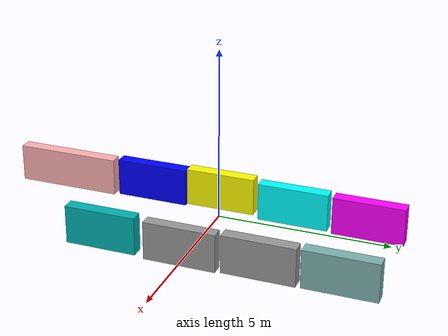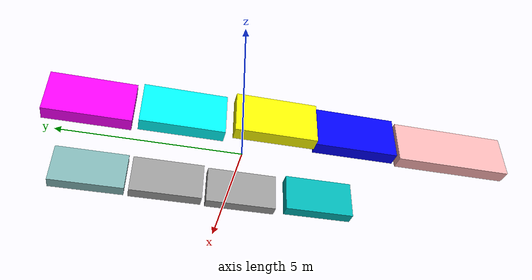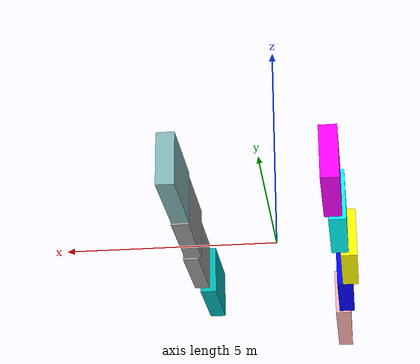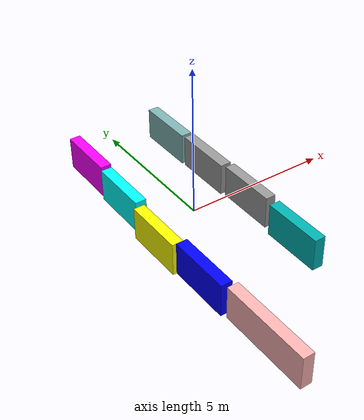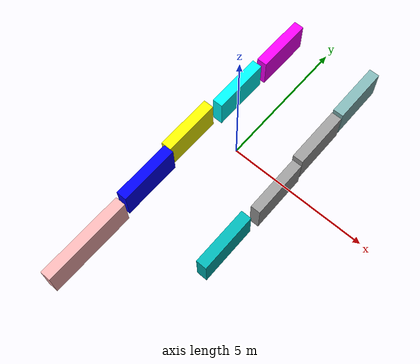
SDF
<?xml version='1.0'?>
<sdf version='1.7'>
  <model name='a_new_world'>
    <link name='link_0'>
      <inertial>
        <mass>1.37526</mass>
        <inertia>
          <ixx>1.29964</ixx>
          <ixy>0</ixy>
          <ixz>0</ixz>
          <iyy>0.164804</iyy>
          <iyz>0</iyz>
          <izz>1.16823</izz>
        </inertia>
        <pose>0 0 0 0.01 -0 0</pose>
      </inertial>
      <pose>-1.42927 -5.50596 -0 0 -0 0</pose>
      <gravity>1</gravity>
      <self_collide>0</self_collide>
      <kinematic>0</kinematic>
      <enable_wind>0</enable_wind>
      <visual name='visual'>
        <pose>0 0 0 0 -0 0</pose>
        <geometry>
          <box>
            <size>0.381709 3.16983 1.1368</size>
          </box>
        </geometry>
        <material>
          <lighting>1</lighting>
          <script>
            <uri>file://media/materials/scripts/gazebo.material</uri>
            <name>Gazebo/Grey</name>
          </script>
          <shader type='pixel'>
            <normal_map>__default__</normal_map>
          </shader>
          <ambient>1 0.3 0.3 1</ambient>
          <diffuse>1 0.7 0.7 1</diffuse>
          <specular>0.01 0.01 0.01 1</specular>
          <emissive>0 0 0 1</emissive>
        </material>
        <transparency>0</transparency>
        <cast_shadows>1</cast_shadows>
      </visual>
      <collision name='collision'>
        <laser_retro>0</laser_retro>
        <max_contacts>10</max_contacts>
        <pose>0 0 0 0 -0 0</pose>
        <geometry>
          <box>
            <size>0.381709 3.16983 1.1368</size>
          </box>
        </geometry>
        <surface>
          <friction>
            <ode>
              <mu>1</mu>
              <mu2>1</mu2>
              <fdir1>0 0 0</fdir1>
              <slip1>0</slip1>
              <slip2>0</slip2>
            </ode>
            <torsional>
              <coefficient>1</coefficient>
              <patch_radius>0</patch_radius>
              <surface_radius>0</surface_radius>
              <use_patch_radius>1</use_patch_radius>
              <ode>
                <slip>0</slip>
              </ode>
            </torsional>
          </friction>
          <bounce>
            <restitution_coefficient>0</restitution_coefficient>
            <threshold>1e+06</threshold>
          </bounce>
          <contact>
            <collide_without_contact>0</collide_without_contact>
            <collide_without_contact_bitmask>1</collide_without_contact_bitmask>
            <collide_bitmask>1</collide_bitmask>
            <ode>
              <soft_cfm>0</soft_cfm>
              <soft_erp>0.2</soft_erp>
              <kp>1e+13</kp>
              <kd>1</kd>
              <max_vel>0.01</max_vel>
              <min_depth>0</min_depth>
            </ode>
            <bullet>
              <split_impulse>1</split_impulse>
              <split_impulse_penetration_threshold>-0.01</split_impulse_penetration_threshold>
              <soft_cfm>0</soft_cfm>
              <soft_erp>0.2</soft_erp>
              <kp>1e+13</kp>
              <kd>1</kd>
            </bullet>
          </contact>
        </surface>
      </collision>
    </link>
    <link name='link_0_clone'>
      <inertial>
        <mass>0.917653</mass>
        <inertia>
          <ixx>0.440885</ixx>
          <ixy>0</ixy>
          <ixz>0</ixz>
          <iyy>0.109966</iyy>
          <iyz>0</iyz>
          <izz>0.353203</izz>
        </inertia>
        <pose>0 0 0 0.01 -0 0</pose>
      </inertial>
      <pose>1.83851 -2.78104 -0 0 -0 0</pose>
      <gravity>1</gravity>
      <self_collide>0</self_collide>
      <kinematic>0</kinematic>
      <enable_wind>0</enable_wind>
      <visual name='visual'>
        <pose>0 0 0 0 -0 0</pose>
        <geometry>
          <box>
            <size>0.381709 2.11497 1.1368</size>
          </box>
        </geometry>
        <material>
          <lighting>1</lighting>
          <script>
            <uri>file://media/materials/scripts/gazebo.material</uri>
            <name>Gazebo/Grey</name>
          </script>
          <shader type='pixel'>
            <normal_map>__default__</normal_map>
          </shader>
          <ambient>0 0.7 0.7 1</ambient>
          <diffuse>0 0.7 0.7 1</diffuse>
          <specular>0.01 0.01 0.01 1</specular>
          <emissive>0 0 0 1</emissive>
        </material>
        <transparency>0</transparency>
        <cast_shadows>1</cast_shadows>
      </visual>
      <collision name='collision'>
        <laser_retro>0</laser_retro>
        <max_contacts>10</max_contacts>
        <pose>0 0 0 0 -0 0</pose>
        <geometry>
          <box>
            <size>0.381709 2.11497 1.1368</size>
          </box>
        </geometry>
        <surface>
          <friction>
            <ode>
              <mu>1</mu>
              <mu2>1</mu2>
              <fdir1>0 0 0</fdir1>
              <slip1>0</slip1>
              <slip2>0</slip2>
            </ode>
            <torsional>
              <coefficient>1</coefficient>
              <patch_radius>0</patch_radius>
              <surface_radius>0</surface_radius>
              <use_patch_radius>1</use_patch_radius>
              <ode>
                <slip>0</slip>
              </ode>
            </torsional>
          </friction>
          <bounce>
            <restitution_coefficient>0</restitution_coefficient>
            <threshold>1e+06</threshold>
          </bounce>
          <contact>
            <collide_without_contact>0</collide_without_contact>
            <collide_without_contact_bitmask>1</collide_without_contact_bitmask>
            <collide_bitmask>1</collide_bitmask>
            <ode>
              <soft_cfm>0</soft_cfm>
              <soft_erp>0.2</soft_erp>
              <kp>1e+13</kp>
              <kd>1</kd>
              <max_vel>0.01</max_vel>
              <min_depth>0</min_depth>
            </ode>
            <bullet>
              <split_impulse>1</split_impulse>
              <split_impulse_penetration_threshold>-0.01</split_impulse_penetration_threshold>
              <soft_cfm>0</soft_cfm>
              <soft_erp>0.2</soft_erp>
              <kp>1e+13</kp>
              <kd>1</kd>
            </bullet>
          </contact>
        </surface>
      </collision>
    </link>
    <link name='link_0_clone_0'>
      <inertial>
        <mass>0.917653</mass>
        <inertia>
          <ixx>0.440885</ixx>
          <ixy>0</ixy>
          <ixz>0</ixz>
          <iyy>0.109966</iyy>
          <iyz>0</iyz>
          <izz>0.353203</izz>
        </inertia>
        <pose>0 0 0 0.01 -0 0</pose>
      </inertial>
      <pose>1.9415 -0.360804 -0 0 -0 0</pose>
      <gravity>1</gravity>
      <self_collide>0</self_collide>
      <kinematic>0</kinematic>
      <enable_wind>0</enable_wind>
      <visual name='visual'>
        <pose>0 0 0 0 -0 0</pose>
        <geometry>
          <box>
            <size>0.351709 2.11497 1.1368</size>
          </box>
        </geometry>
        <material>
          <lighting>1</lighting>
          <script>
            <uri>file://media/materials/scripts/gazebo.material</uri>
            <name>Gazebo/Grey</name>
          </script>
          <shader type='pixel'>
            <normal_map>__default__</normal_map>
          </shader>
          <ambient>0 0 0 1</ambient>
          <diffuse>0 0 0 1</diffuse>
          <specular>0 0 0 1</specular>
          <emissive>0 0 0 1</emissive>
        </material>
        <transparency>0</transparency>
        <cast_shadows>1</cast_shadows>
      </visual>
      <collision name='collision'>
        <laser_retro>0</laser_retro>
        <max_contacts>10</max_contacts>
        <pose>0 0 0 0 -0 0</pose>
        <geometry>
          <box>
            <size>0.381709 2.11497 1.1368</size>
          </box>
        </geometry>
        <surface>
          <friction>
            <ode>
              <mu>1</mu>
              <mu2>1</mu2>
              <fdir1>0 0 0</fdir1>
              <slip1>0</slip1>
              <slip2>0</slip2>
            </ode>
            <torsional>
              <coefficient>1</coefficient>
              <patch_radius>0</patch_radius>
              <surface_radius>0</surface_radius>
              <use_patch_radius>1</use_patch_radius>
              <ode>
                <slip>0</slip>
              </ode>
            </torsional>
          </friction>
          <bounce>
            <restitution_coefficient>0</restitution_coefficient>
            <threshold>1e+06</threshold>
          </bounce>
          <contact>
            <collide_without_contact>0</collide_without_contact>
            <collide_without_contact_bitmask>1</collide_without_contact_bitmask>
            <collide_bitmask>1</collide_bitmask>
            <ode>
              <soft_cfm>0</soft_cfm>
              <soft_erp>0.2</soft_erp>
              <kp>1e+13</kp>
              <kd>1</kd>
              <max_vel>0.01</max_vel>
              <min_depth>0</min_depth>
            </ode>
            <bullet>
              <split_impulse>1</split_impulse>
              <split_impulse_penetration_threshold>-0.01</split_impulse_penetration_threshold>
              <soft_cfm>0</soft_cfm>
              <soft_erp>0.2</soft_erp>
              <kp>1e+13</kp>
              <kd>1</kd>
            </bullet>
          </contact>
        </surface>
      </collision>
    </link>
    <link name='link_0_clone_1'>
      <inertial>
        <mass>0.917653</mass>
        <inertia>
          <ixx>0.440885</ixx>
          <ixy>0</ixy>
          <ixz>0</ixz>
          <iyy>0.109966</iyy>
          <iyz>0</iyz>
          <izz>0.353203</izz>
        </inertia>
        <pose>0 0 0 0.01 -0 0</pose>
      </inertial>
      <pose>1.8664 1.88666 -0 0 -0 0</pose>
      <gravity>1</gravity>
      <self_collide>0</self_collide>
      <kinematic>0</kinematic>
      <enable_wind>0</enable_wind>
      <visual name='visual'>
        <pose>0 0 0 0 -0 0</pose>
        <geometry>
          <box>
            <size>0.381709 2.11497 1.1368</size>
          </box>
        </geometry>
        <material>
          <lighting>1</lighting>
          <script>
            <uri>file://media/materials/scripts/gazebo.material</uri>
            <name>Gazebo/Grey</name>
          </script>
          <shader type='pixel'>
            <normal_map>__default__</normal_map>
          </shader>
          <ambient>1 1 1 1</ambient>
          <diffuse>1 1 1 1</diffuse>
          <specular>1 1 1 1</specular>
          <emissive>0 0 0 1</emissive>
        </material>
        <transparency>0</transparency>
        <cast_shadows>1</cast_shadows>
      </visual>
      <collision name='collision'>
        <laser_retro>0</laser_retro>
        <max_contacts>10</max_contacts>
        <pose>0 0 0 0 -0 0</pose>
        <geometry>
          <box>
            <size>0.381709 2.11497 1.1368</size>
          </box>
        </geometry>
        <surface>
          <friction>
            <ode>
              <mu>1</mu>
              <mu2>1</mu2>
              <fdir1>0 0 0</fdir1>
              <slip1>0</slip1>
              <slip2>0</slip2>
            </ode>
            <torsional>
              <coefficient>1</coefficient>
              <patch_radius>0</patch_radius>
              <surface_radius>0</surface_radius>
              <use_patch_radius>1</use_patch_radius>
              <ode>
                <slip>0</slip>
              </ode>
            </torsional>
          </friction>
          <bounce>
            <restitution_coefficient>0</restitution_coefficient>
            <threshold>1e+06</threshold>
          </bounce>
          <contact>
            <collide_without_contact>0</collide_without_contact>
            <collide_without_contact_bitmask>1</collide_without_contact_bitmask>
            <collide_bitmask>1</collide_bitmask>
            <ode>
              <soft_cfm>0</soft_cfm>
              <soft_erp>0.2</soft_erp>
              <kp>1e+13</kp>
              <kd>1</kd>
              <max_vel>0.01</max_vel>
              <min_depth>0</min_depth>
            </ode>
            <bullet>
              <split_impulse>1</split_impulse>
              <split_impulse_penetration_threshold>-0.01</split_impulse_penetration_threshold>
              <soft_cfm>0</soft_cfm>
              <soft_erp>0.2</soft_erp>
              <kp>1e+13</kp>
              <kd>1</kd>
            </bullet>
          </contact>
        </surface>
      </collision>
    </link>
    <link name='link_0_clone_2'>
      <inertial>
        <mass>0.917653</mass>
        <inertia>
          <ixx>0.440885</ixx>
          <ixy>0</ixy>
          <ixz>0</ixz>
          <iyy>0.109966</iyy>
          <iyz>0</iyz>
          <izz>0.353203</izz>
        </inertia>
        <pose>0 0 0 0.01 -0 0</pose>
      </inertial>
      <pose>1.83898 4.12389 -0 0 -0 0</pose>
      <gravity>1</gravity>
      <self_collide>0</self_collide>
      <kinematic>0</kinematic>
      <enable_wind>0</enable_wind>
      <visual name='visual'>
        <pose>0 0 0 0 -0 0</pose>
        <geometry>
          <box>
            <size>0.381709 2.11497 1.1368</size>
          </box>
        </geometry>
        <material>
          <lighting>1</lighting>
          <script>
            <uri>file://media/materials/scripts/gazebo.material</uri>
            <name>Gazebo/Grey</name>
          </script>
          <shader type='pixel'>
            <normal_map>__default__</normal_map>
          </shader>
          <ambient>0.5 0.3 0.3 1</ambient>
          <diffuse>0.5 0.7 0.7 1</diffuse>
          <specular>0.01 0.01 0.01 1</specular>
          <emissive>0 0 0 1</emissive>
        </material>
        <transparency>0</transparency>
        <cast_shadows>1</cast_shadows>
      </visual>
      <collision name='collision'>
        <laser_retro>0</laser_retro>
        <max_contacts>10</max_contacts>
        <pose>0 0 0 0 -0 0</pose>
        <geometry>
          <box>
            <size>0.381709 2.11497 1.1368</size>
          </box>
        </geometry>
        <surface>
          <friction>
            <ode>
              <mu>1</mu>
              <mu2>1</mu2>
              <fdir1>0 0 0</fdir1>
              <slip1>0</slip1>
              <slip2>0</slip2>
            </ode>
            <torsional>
              <coefficient>1</coefficient>
              <patch_radius>0</patch_radius>
              <surface_radius>0</surface_radius>
              <use_patch_radius>1</use_patch_radius>
              <ode>
                <slip>0</slip>
              </ode>
            </torsional>
          </friction>
          <bounce>
            <restitution_coefficient>0</restitution_coefficient>
            <threshold>1e+06</threshold>
          </bounce>
          <contact>
            <collide_without_contact>0</collide_without_contact>
            <collide_without_contact_bitmask>1</collide_without_contact_bitmask>
            <collide_bitmask>1</collide_bitmask>
            <ode>
              <soft_cfm>0</soft_cfm>
              <soft_erp>0.2</soft_erp>
              <kp>1e+13</kp>
              <kd>1</kd>
              <max_vel>0.01</max_vel>
              <min_depth>0</min_depth>
            </ode>
            <bullet>
              <split_impulse>1</split_impulse>
              <split_impulse_penetration_threshold>-0.01</split_impulse_penetration_threshold>
              <soft_cfm>0</soft_cfm>
              <soft_erp>0.2</soft_erp>
              <kp>1e+13</kp>
              <kd>1</kd>
            </bullet>
          </contact>
        </surface>
      </collision>
    </link>
    <link name='link_0_clone_3'>
      <inertial>
        <mass>0.917653</mass>
        <inertia>
          <ixx>0.440885</ixx>
          <ixy>0</ixy>
          <ixz>0</ixz>
          <iyy>0.109966</iyy>
          <iyz>0</iyz>
          <izz>0.353203</izz>
        </inertia>
        <pose>0 0 0 0.01 -0 0</pose>
      </inertial>
      <pose>-1.38781 4.06397 -0 0 -0 0</pose>
      <gravity>1</gravity>
      <self_collide>0</self_collide>
      <kinematic>0</kinematic>
      <enable_wind>0</enable_wind>
      <visual name='visual'>
        <pose>0 0 0 0 -0 0</pose>
        <geometry>
          <box>
            <size>0.381709 2.11497 1.1368</size>
          </box>
        </geometry>
        <material>
          <lighting>1</lighting>
          <script>
            <uri>file://media/materials/scripts/gazebo.material</uri>
            <name>Gazebo/Grey</name>
          </script>
          <shader type='pixel'>
            <normal_map>__default__</normal_map>
          </shader>
          <ambient>1 0 1 1</ambient>
          <diffuse>1 0 1 1</diffuse>
          <specular>0.01 0.01 0.01 1</specular>
          <emissive>0 0 0 1</emissive>
        </material>
        <transparency>0</transparency>
        <cast_shadows>1</cast_shadows>
      </visual>
      <collision name='collision'>
        <laser_retro>0</laser_retro>
        <max_contacts>10</max_contacts>
        <pose>0 0 0 0 -0 0</pose>
        <geometry>
          <box>
            <size>0.381709 2.11497 1.1368</size>
          </box>
        </geometry>
        <surface>
          <friction>
            <ode>
              <mu>1</mu>
              <mu2>1</mu2>
              <fdir1>0 0 0</fdir1>
              <slip1>0</slip1>
              <slip2>0</slip2>
            </ode>
            <torsional>
              <coefficient>1</coefficient>
              <patch_radius>0</patch_radius>
              <surface_radius>0</surface_radius>
              <use_patch_radius>1</use_patch_radius>
              <ode>
                <slip>0</slip>
              </ode>
            </torsional>
          </friction>
          <bounce>
            <restitution_coefficient>0</restitution_coefficient>
            <threshold>1e+06</threshold>
          </bounce>
          <contact>
            <collide_without_contact>0</collide_without_contact>
            <collide_without_contact_bitmask>1</collide_without_contact_bitmask>
            <collide_bitmask>1</collide_bitmask>
            <ode>
              <soft_cfm>0</soft_cfm>
              <soft_erp>0.2</soft_erp>
              <kp>1e+13</kp>
              <kd>1</kd>
              <max_vel>0.01</max_vel>
              <min_depth>0</min_depth>
            </ode>
            <bullet>
              <split_impulse>1</split_impulse>
              <split_impulse_penetration_threshold>-0.01</split_impulse_penetration_threshold>
              <soft_cfm>0</soft_cfm>
              <soft_erp>0.2</soft_erp>
              <kp>1e+13</kp>
              <kd>1</kd>
            </bullet>
          </contact>
        </surface>
      </collision>
    </link>
    <link name='link_0_clone_4'>
      <inertial>
        <mass>0.917653</mass>
        <inertia>
          <ixx>0.440885</ixx>
          <ixy>0</ixy>
          <ixz>0</ixz>
          <iyy>0.109966</iyy>
          <iyz>0</iyz>
          <izz>0.353203</izz>
        </inertia>
        <pose>0 0 0 0.01 -0 0</pose>
      </inertial>
      <pose>-1.46867 1.79455 -0 0 -0 0</pose>
      <gravity>1</gravity>
      <self_collide>0</self_collide>
      <kinematic>0</kinematic>
      <enable_wind>0</enable_wind>
      <visual name='visual'>
        <pose>0 0 0 0 -0 0</pose>
        <geometry>
          <box>
            <size>0.381709 2.11497 1.1368</size>
          </box>
        </geometry>
        <material>
          <lighting>1</lighting>
          <script>
            <uri>file://media/materials/scripts/gazebo.material</uri>
            <name>Gazebo/Grey</name>
          </script>
          <shader type='pixel'>
            <normal_map>__default__</normal_map>
          </shader>
          <ambient>1 0.3 0.3 1</ambient>
          <diffuse>0 1 1 1</diffuse>
          <specular>0 1 1 1</specular>
          <emissive>0 0.1 1 1</emissive>
        </material>
        <transparency>0</transparency>
        <cast_shadows>1</cast_shadows>
      </visual>
      <collision name='collision'>
        <laser_retro>0</laser_retro>
        <max_contacts>10</max_contacts>
        <pose>0 0 0 0 -0 0</pose>
        <geometry>
          <box>
            <size>0.381709 2.11497 1.1368</size>
          </box>
        </geometry>
        <surface>
          <friction>
            <ode>
              <mu>1</mu>
              <mu2>1</mu2>
              <fdir1>0 0 0</fdir1>
              <slip1>0</slip1>
              <slip2>0</slip2>
            </ode>
            <torsional>
              <coefficient>1</coefficient>
              <patch_radius>0</patch_radius>
              <surface_radius>0</surface_radius>
              <use_patch_radius>1</use_patch_radius>
              <ode>
                <slip>0</slip>
              </ode>
            </torsional>
          </friction>
          <bounce>
            <restitution_coefficient>0</restitution_coefficient>
            <threshold>1e+06</threshold>
          </bounce>
          <contact>
            <collide_without_contact>0</collide_without_contact>
            <collide_without_contact_bitmask>1</collide_without_contact_bitmask>
            <collide_bitmask>1</collide_bitmask>
            <ode>
              <soft_cfm>0</soft_cfm>
              <soft_erp>0.2</soft_erp>
              <kp>1e+13</kp>
              <kd>1</kd>
              <max_vel>0.01</max_vel>
              <min_depth>0</min_depth>
            </ode>
            <bullet>
              <split_impulse>1</split_impulse>
              <split_impulse_penetration_threshold>-0.01</split_impulse_penetration_threshold>
              <soft_cfm>0</soft_cfm>
              <soft_erp>0.2</soft_erp>
              <kp>1e+13</kp>
              <kd>1</kd>
            </bullet>
          </contact>
        </surface>
      </collision>
    </link>
    <link name='link_0_clone_5'>
      <inertial>
        <mass>0.917653</mass>
        <inertia>
          <ixx>0.440885</ixx>
          <ixy>0</ixy>
          <ixz>0</ixz>
          <iyy>0.109966</iyy>
          <iyz>0</iyz>
          <izz>0.353203</izz>
        </inertia>
        <pose>0 0 0 0.01 -0 0</pose>
      </inertial>
      <pose>-1.66693 -0.531141 -0 0 -0 0</pose>
      <gravity>1</gravity>
      <self_collide>0</self_collide>
      <kinematic>0</kinematic>
      <enable_wind>0</enable_wind>
      <visual name='visual'>
        <pose>0 0 0 0 -0 0</pose>
        <geometry>
          <box>
            <size>0.381709 2.11497 1.1368</size>
          </box>
        </geometry>
        <material>
          <lighting>1</lighting>
          <script>
            <uri>file://media/materials/scripts/gazebo.material</uri>
            <name>Gazebo/Grey</name>
          </script>
          <shader type='pixel'>
            <normal_map>__default__</normal_map>
          </shader>
          <ambient>1 1 0 1</ambient>
          <diffuse>1 1 0 1</diffuse>
          <specular>0.01 0.01 0.01 1</specular>
          <emissive>0 0 0 1</emissive>
        </material>
        <transparency>0</transparency>
        <cast_shadows>1</cast_shadows>
      </visual>
      <collision name='collision'>
        <laser_retro>0</laser_retro>
        <max_contacts>10</max_contacts>
        <pose>0 0 0 0 -0 0</pose>
        <geometry>
          <box>
            <size>0.381709 2.11497 1.1368</size>
          </box>
        </geometry>
        <surface>
          <friction>
            <ode>
              <mu>1</mu>
              <mu2>1</mu2>
              <fdir1>0 0 0</fdir1>
              <slip1>0</slip1>
              <slip2>0</slip2>
            </ode>
            <torsional>
              <coefficient>1</coefficient>
              <patch_radius>0</patch_radius>
              <surface_radius>0</surface_radius>
              <use_patch_radius>1</use_patch_radius>
              <ode>
                <slip>0</slip>
              </ode>
            </torsional>
          </friction>
          <bounce>
            <restitution_coefficient>0</restitution_coefficient>
            <threshold>1e+06</threshold>
          </bounce>
          <contact>
            <collide_without_contact>0</collide_without_contact>
            <collide_without_contact_bitmask>1</collide_without_contact_bitmask>
            <collide_bitmask>1</collide_bitmask>
            <ode>
              <soft_cfm>0</soft_cfm>
              <soft_erp>0.2</soft_erp>
              <kp>1e+13</kp>
              <kd>1</kd>
              <max_vel>0.01</max_vel>
              <min_depth>0</min_depth>
            </ode>
            <bullet>
              <split_impulse>1</split_impulse>
              <split_impulse_penetration_threshold>-0.01</split_impulse_penetration_threshold>
              <soft_cfm>0</soft_cfm>
              <soft_erp>0.2</soft_erp>
              <kp>1e+13</kp>
              <kd>1</kd>
            </bullet>
          </contact>
        </surface>
      </collision>
    </link>
    <link name='link_0_clone_6'>
      <inertial>
        <mass>0.955571</mass>
        <inertia>
          <ixx>0.489151</ixx>
          <ixy>0</ixy>
          <ixz>0</ixz>
          <iyy>0.114511</iyy>
          <iyz>0</iyz>
          <izz>0.397845</izz>
        </inertia>
        <pose>0 0 0 0.01 -0 0</pose>
      </inertial>
      <pose>-1.53271 -2.6901 -0 0 -0 0</pose>
      <gravity>1</gravity>
      <self_collide>0</self_collide>
      <kinematic>0</kinematic>
      <enable_wind>0</enable_wind>
      <visual name='visual'>
        <pose>0 0 0 0 -0 0</pose>
        <geometry>
          <box>
            <size>0.381709 2.20236 1.1368</size>
          </box>
        </geometry>
        <material>
          <lighting>1</lighting>
          <script>
            <uri>file://media/materials/scripts/gazebo.material</uri>
            <name>Gazebo/Grey</name>
          </script>
          <shader type='pixel'>
            <normal_map>__default__</normal_map>
          </shader>
          <ambient>0 0 1 1</ambient>
          <diffuse>0 0 1 1</diffuse>
          <specular>0.01 0.01 0.01 1</specular>
          <emissive>0 0 0 1</emissive>
        </material>
        <transparency>0</transparency>
        <cast_shadows>1</cast_shadows>
      </visual>
      <collision name='collision'>
        <laser_retro>0</laser_retro>
        <max_contacts>10</max_contacts>
        <pose>0 0 0 0 -0 0</pose>
        <geometry>
          <box>
            <size>0.381709 2.20236 1.1368</size>
          </box>
        </geometry>
        <surface>
          <friction>
            <ode>
              <mu>1</mu>
              <mu2>1</mu2>
              <fdir1>0 0 0</fdir1>
              <slip1>0</slip1>
              <slip2>0</slip2>
            </ode>
            <torsional>
              <coefficient>1</coefficient>
              <patch_radius>0</patch_radius>
              <surface_radius>0</surface_radius>
              <use_patch_radius>1</use_patch_radius>
              <ode>
                <slip>0</slip>
              </ode>
            </torsional>
          </friction>
          <bounce>
            <restitution_coefficient>0</restitution_coefficient>
            <threshold>1e+06</threshold>
          </bounce>
          <contact>
            <collide_without_contact>0</collide_without_contact>
            <collide_without_contact_bitmask>1</collide_without_contact_bitmask>
            <collide_bitmask>1</collide_bitmask>
            <ode>
              <soft_cfm>0</soft_cfm>
              <soft_erp>0.2</soft_erp>
              <kp>1e+13</kp>
              <kd>1</kd>
              <max_vel>0.01</max_vel>
              <min_depth>0</min_depth>
            </ode>
            <bullet>
              <split_impulse>1</split_impulse>
              <split_impulse_penetration_threshold>-0.01</split_impulse_penetration_threshold>
              <soft_cfm>0</soft_cfm>
              <soft_erp>0.2</soft_erp>
              <kp>1e+13</kp>
              <kd>1</kd>
            </bullet>
          </contact>
        </surface>
      </collision>
    </link>
    <static>0</static>
    <allow_auto_disable>1</allow_auto_disable>
  </model>
</sdf>
